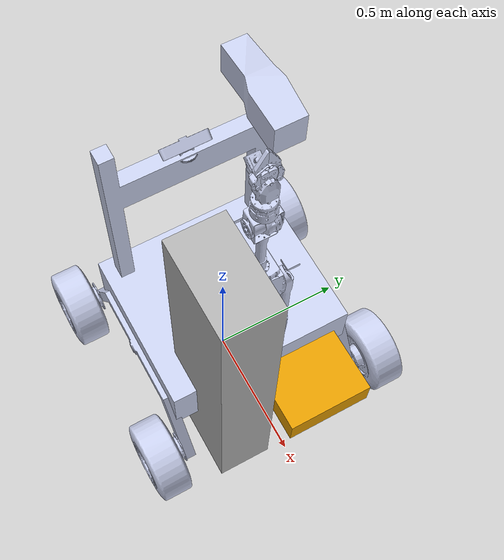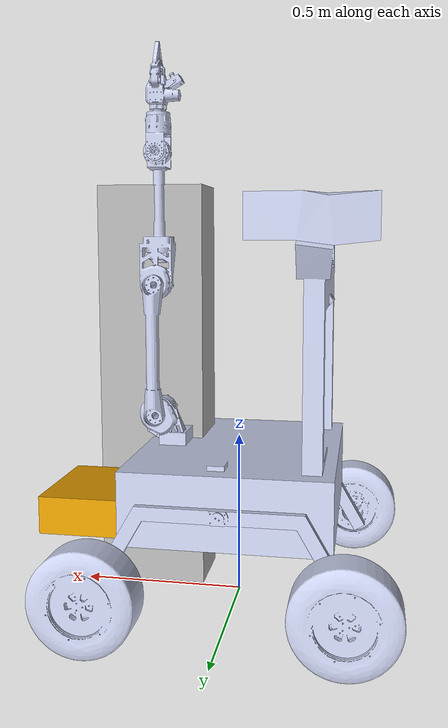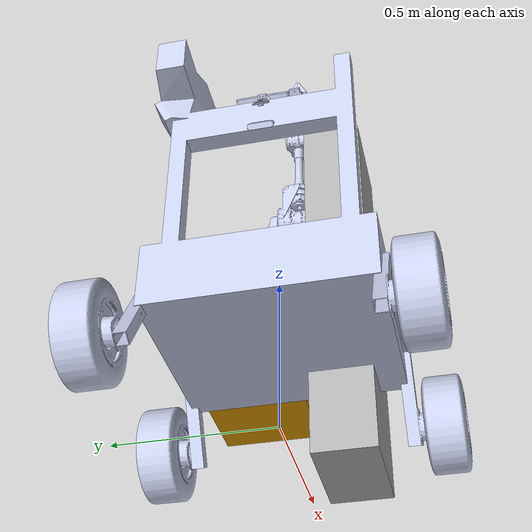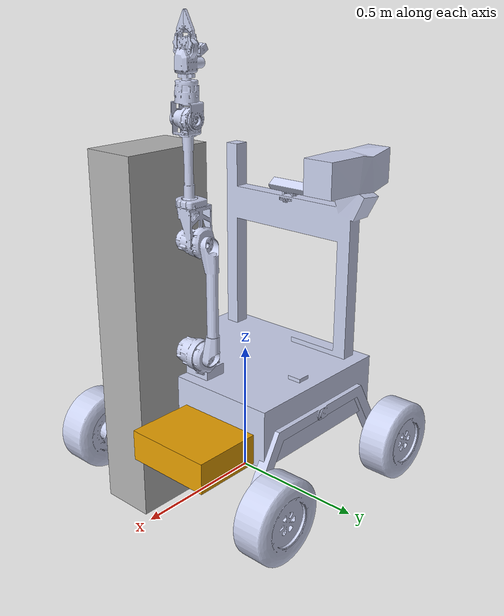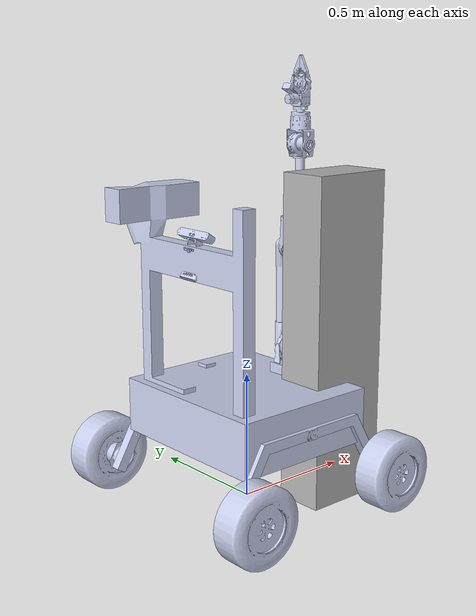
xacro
<?xml version="1.0" encoding="utf-8"?>
<robot xmlns:xacro="http://www.ros.org/wiki/xacro" name="scorpio8">
    <!--=================LINKS =================-->
    <link name="base_footprint" />

    <link name="base_link">
        <inertial>
            <origin xyz="-0.083126 0.053752 0.23235" rpy="0 0 1.5708" />
            <mass value="4.2005" />
            <inertia ixx="0.042059" ixy="5.1186E-05" ixz="2.0607E-05" iyy="0.022715"
                iyz="2.2195E-06" izz="0.04664" />
        </inertial>
        <visual>
            <origin xyz="0 0 0" rpy="0 0 0" />
            <geometry>
                <mesh filename="package://description/meshes/base_link.STL" />
            </geometry>
            <material name="">
                <color rgba="0.79216 0.81961 0.93333 1" />
            </material>
        </visual>
        <collision>
            <origin xyz="0 0 0" rpy="0 0 1.5708" />
            <geometry>
                <mesh filename="package://description/meshes/base_link_simple.STL" />
            </geometry>
        </collision>
    </link>

    <link name="pointcloud_filter_base_link">
        <collision>
            <origin xyz="0 0 0" rpy="0 0 0" />
            <geometry>
                <box size="0.88 0.98 2.2" />
            </geometry>
        </collision>
    </link>

    <link name="pointcloud_filter_wheel_lf_link">
        <collision>
            <origin xyz="0.1 -0.2 0.25" rpy="0 0 0" />
            <geometry>
                <box size="0.55 0.95 0.75" />
            </geometry>
        </collision>
    </link>

    <link name="pointcloud_filter_wheel_lr_link">
        <collision>
            <origin xyz="0 0 0" rpy="0 0 0" />
            <geometry>
                <box size="0.4 0.35 0.4" />
            </geometry>
        </collision>
    </link>

    <link name="pointcloud_filter_wheel_rf_link">
        <collision>
            <origin xyz="0.1 0.2 0.25" rpy="0 0 0" />
            <geometry>
                <box size="0.55 0.95 0.75" />
            </geometry>
        </collision>
    </link>

    <link name="pointcloud_filter_wheel_rr_link">
        <collision>
            <origin xyz="0 0 0" rpy="0 0 0" />
            <geometry>
                <box size="0.4 0.35 0.4" />
            </geometry>
        </collision>
    </link>

    <link name="drill_placeholder_link">
        <visual>
            <origin xyz="0 0 0" rpy="0 0 0" />
            <geometry>
                <box size="0.34 0.2 1.3" />
            </geometry>
        </visual>
        <collision>
            <origin xyz="0 0 0" rpy="0 0 0" />
            <geometry>
                <box size="0.34 0.28 1.3" /> <!-- Slightly larger than visual to stop before collision -->
            </geometry>
        </collision>
    </link>

    <link name="containers_placeholder_link">
        <visual>
            <origin xyz="0 0 0" rpy="0 0 0" />
            <geometry>
                <box size="0.26 0.32 0.11" />
            </geometry>
        </visual>
        <collision>
            <origin xyz="0 0 0" rpy="0 0 0" />
            <geometry>
                <box size="0.32 0.40 0.14" /> <!-- Slightly larger than visual to stop before collision -->
            </geometry>
        </collision>
    </link>

    <link name="mani_base_link">
        <inertial>
            <origin xyz="-0.008833 -0.025663 -0.82163" rpy="0 0 0" />
            <mass value="0.52453" />
            <inertia ixx="0.00042301" ixy="-6.6556E-07" ixz="-8.6254E-06" iyy="0.00075308"
                iyz="-1.2691E-06" izz="0.00043902" />
        </inertial>
        <visual>
            <origin xyz="0 0 0" rpy="0 0 0" />
            <geometry>
                <mesh filename="package://description/meshes/mani_base_link.STL" />
            </geometry>
            <material name="">
                <color rgba="0.79216 0.81961 0.93333 1" />
            </material>
        </visual>
        <collision>
            <origin xyz="0 0 0" rpy="0 0 0" />
            <geometry>
                <mesh filename="package://description/meshes/mani_base_link_convex.STL" />
            </geometry>
        </collision>
    </link>

    <link name="shoulder_link">
        <inertial>
            <origin xyz="5.0147E-10 0.0073458 0.19833" rpy="0 0 0" />
            <mass value="0.30879" />
            <inertia ixx="0.00099796" ixy="6.6832E-13" ixz="-8.486E-10" iyy="0.0010591"
                iyz="-8.6822E-13" izz="0.00014677" />
        </inertial>
        <visual>
            <origin xyz="0 0 0" rpy="0 0 0" />
            <geometry>
                <mesh filename="package://description/meshes/shoulder_link.STL" />
            </geometry>
            <material name="">
                <color rgba="0.79216 0.81961 0.93333 1" />
            </material>
        </visual>
        <collision>
            <origin xyz="0 0 0" rpy="0 0 0" />
            <geometry>
                <mesh filename="package://description/meshes/shoulder_link_convex.STL" />
            </geometry>
        </collision>
    </link>

    <link name="elbow_link">
        <inertial>
            <origin xyz="8.8207E-05 -0.062585 0.05056" rpy="0 0 0" />
            <mass value="0.5438" />
            <inertia ixx="0.0003495" ixy="3.6135E-07" ixz="3.4342E-08" iyy="0.00050989"
                iyz="5.4303E-06" izz="0.00039008" />
        </inertial>
        <visual>
            <origin xyz="0 0 0" rpy="0 0 0" />
            <geometry>
                <mesh filename="package://description/meshes/elbow_link.STL" />
            </geometry>
            <material name="">
                <color rgba="0.79216 0.81961 0.93333 1" />
            </material>
        </visual>
        <collision>
            <origin xyz="0 0 0" rpy="0 0 0" />
            <geometry>
                <mesh filename="package://description/meshes/elbow_link_convex.STL" />
            </geometry>
        </collision>
    </link>

    <link name="wrist1_link">
        <inertial>
            <origin xyz="0 -0.0044319 0.20079" rpy="0 0 0" />
            <mass value="0.27195" />
            <inertia ixx="0.0003288" ixy="-6.0783E-08" ixz="-1.5768E-08" iyy="0.00035563"
                iyz="-5.5998E-07" izz="0.00012039" />
        </inertial>
        <visual>
            <origin xyz="0 0 0" rpy="0 0 0" />
            <geometry>
                <mesh filename="package://description/meshes/wrist1_link.STL" />
            </geometry>
            <material name="">
                <color rgba="0.79216 0.81961 0.93333 1" />
            </material>
        </visual>
        <collision>
            <origin xyz="0 0 0" rpy="0 0 0" />
            <geometry>
                <mesh filename="package://description/meshes/wrist1_link_convex.STL" />
            </geometry>
        </collision>
    </link>

    <link name="basiakowa_link">
        <inertial>
            <origin xyz="-6.625E-05 -0.046522 0.062054" rpy="0 0 0" />
            <mass value="0.15381" />
            <inertia ixx="0.00012243" ixy="3.5518E-08" ixz="-8.1217E-09" iyy="9.2766E-05"
                iyz="-1.0765E-06" izz="0.00017065" />
        </inertial>
        <visual>
            <origin xyz="0 0 0" rpy="0 0 0" />
            <geometry>
                <mesh filename="package://description/meshes/basiakowa_link.STL" />
            </geometry>
            <material name="">
                <color rgba="0.79216 0.81961 0.93333 1" />
            </material>
        </visual>
        <collision>
            <origin xyz="0 0 0" rpy="0 0 0" />
            <geometry>
                <mesh filename="package://description/meshes/basiakowa_link_convex.STL" />
            </geometry>
        </collision>
    </link>

    <link name="wrist2_link">
        <inertial>
            <origin xyz="-0.017888 0.0004157 0.068925" rpy="0 0 0" />
            <mass value="0.27399" />
            <inertia ixx="0.00012629" ixy="-4.1013E-08" ixz="1.1916E-06" iyy="8.3885E-05"
                iyz="-4.3663E-07" izz="8.7593E-05" />
        </inertial>
        <visual>
            <origin xyz="0 0 0" rpy="0 0 0" />
            <geometry>
                <mesh filename="package://description/meshes/wrist2_link.STL" />
            </geometry>
            <material name="">
                <color rgba="0.79216 0.81961 0.93333 1" />
            </material>
        </visual>
        <collision>
            <origin xyz="0 0 0" rpy="0 0 0" />
            <geometry>
                <mesh filename="package://description/meshes/wrist2_link_convex.STL" />
            </geometry>
        </collision>
    </link>

    <link name="gripper_encoder_link">
        <inertial>
            <origin xyz="0.016163 -0.00028685 -0.017" rpy="0 0 0" />
            <mass value="0.0071332" />
            <inertia ixx="2.5701E-07" ixy="5.8889E-09" ixz="-3.003E-15" iyy="1.356E-06"
                iyz="-2.565E-16" izz="1.3159E-06" />
        </inertial>
        <visual>
            <origin xyz="0 0 0" rpy="0 0 0" />
            <geometry>
                <mesh
                filename="package://description/meshes/gripper_encoder_link.STL" />
            </geometry>
            <material name="">
                <color rgba="0.79216 0.81961 0.93333 1" />
            </material>
        </visual>
        <collision>
            <origin xyz="0 0 0" rpy="0 0 0" />
            <geometry>
                <mesh
                filename="package://description/meshes/gripper_encoder_link.STL" />
            </geometry>
        </collision>
    </link>

    <link name="gripper_encoder_mirror_link">
        <inertial>
            <origin xyz="0.016163 -0.00028685 -0.017" rpy="0 0 0" />
            <mass value="0.0071332" />
            <inertia ixx="2.5701E-07" ixy="5.8889E-09" ixz="-3.003E-15" iyy="1.356E-06"
                iyz="-2.565E-16" izz="1.3159E-06" />
        </inertial>
        <visual>
            <origin xyz="0 0 0" rpy="0 0 0" />
            <geometry>
                <mesh
                filename="package://description/meshes/gripper_encoder_link.STL" />
            </geometry>
            <material name="">
                <color rgba="0.79216 0.81961 0.93333 1" />
            </material>
        </visual>
        <collision>
            <origin xyz="0 0 0" rpy="0 0 0" />
            <geometry>
                <mesh
                filename="package://description/meshes/gripper_encoder_link.STL" />
            </geometry>
        </collision>
    </link>

    <link name="gripper_finger_link">
        <inertial>
            <origin xyz="0.030543 -0.014262 -0.014" rpy="0 0 0" />
            <mass value="0.019647" />
            <inertia ixx="2.1825E-06" ixy="1.7619E-06" ixz="2.8698E-13" iyy="4.1472E-06"
                iyz="-4.1559E-14" izz="5.6501E-06" />
        </inertial>
        <visual>
            <origin xyz="0 0 0" rpy="0 0 0" />
            <geometry>
                <mesh filename="package://description/meshes/gripper_finger_link.STL" />
            </geometry>
            <material name="">
                <color rgba="0.79216 0.81961 0.93333 1" />
            </material>
        </visual>
        <collision>
            <origin xyz="0 0 0" rpy="0 0 0" />
            <geometry>
                <mesh filename="package://description/meshes/gripper_finger_link.STL" />
            </geometry>
        </collision>
    </link>

    <link name="gripper_finger_mirror_link">
        <inertial>
            <origin xyz="0.030543 -0.014262 -0.014" rpy="0 0 0" />
            <mass value="0.019647" />
            <inertia ixx="2.1825E-06" ixy="1.7619E-06" ixz="2.8698E-13" iyy="4.1472E-06"
                iyz="-4.1559E-14" izz="5.6501E-06" />
        </inertial>
        <visual>
            <origin xyz="0 0 0" rpy="0 0 0" />
            <geometry>
                <mesh filename="package://description/meshes/gripper_finger_link.STL" />
            </geometry>
            <material name="">
                <color rgba="0.79216 0.81961 0.93333 1" />
            </material>
        </visual>
        <collision>
            <origin xyz="0 0 0" rpy="0 0 0" />
            <geometry>
                <mesh filename="package://description/meshes/gripper_finger_link.STL" />
            </geometry>
        </collision>
    </link>

    <link name="wahacz_L_link">
        <inertial>
            <origin xyz="1.362E-07 0.00014793 -0.067975" rpy="0 0 0" />
            <mass value="0.34494" />
            <inertia ixx="0.0011637" ixy="2.2392E-09" ixz="-1.1412E-08" iyy="0.0037762"
                iyz="-5.0697E-07" izz="0.0027662" />
        </inertial>
        <visual>
            <origin xyz="0 0 0" rpy="0 0 0" />
            <geometry>
                <mesh filename="package://description/meshes/wahacz_L_link.STL" />
            </geometry>
            <material name="">
                <color rgba="0.79216 0.81961 0.93333 1" />
            </material>
        </visual>
        <collision>
            <origin xyz="0 0 0" rpy="0 0 0" />
            <geometry>
                <mesh filename="package://description/meshes/wahacz_L_link_simple.STL" />
            </geometry>
        </collision>
    </link>

    <link name="wheel_LF_link">
        <inertial>
            <origin xyz="-7.3018E-06 -0.00022197 -8.9267E-06" rpy="0 0 0" />
            <mass value="3.6246" />
            <inertia ixx="0.01373" ixy="5.135E-09" ixz="-2.4544E-06" iyy="0.020859"
                iyz="-1.3343E-09" izz="0.013628" />
        </inertial>
        <visual>
            <origin xyz="0 0 0" rpy="0 0 3.1415926" />
            <geometry>
                <mesh filename="package://description/meshes/wheel_link.STL" />
            </geometry>
            <material name="">
                <color rgba="0.79216 0.81961 0.93333 1" />
            </material>
        </visual>
        <collision>
            <origin xyz="0 0 0" rpy="0 0 3.1415926" />
            <geometry>
                <mesh filename="package://description/meshes/wheel_link_simple.STL" />
            </geometry>
        </collision>
    </link>

    <link name="wheel_LR_link">
        <inertial>
            <origin xyz="-1.1382E-05 -0.00022197 1.8602E-06" rpy="0 0 0" />
            <mass value="3.6246" />
            <inertia ixx="0.013651" ixy="1.4119E-09" ixz="-4.2644E-05" iyy="0.020859"
                iyz="-5.1142E-09" izz="0.013706" />
        </inertial>
        <visual>
            <origin xyz="0 0 0" rpy="0 0 3.1415926" />
            <geometry>
                <mesh filename="package://description/meshes/wheel_link.STL" />
            </geometry>
            <material name="">
                <color rgba="0.79216 0.81961 0.93333 1" />
            </material>
        </visual>
        <collision>
            <origin xyz="0 0 0" rpy="0 0 3.1415926" />
            <geometry>
                <mesh filename="package://description/meshes/wheel_link_simple.STL" />
            </geometry>
        </collision>
    </link>

    <link name="wahacz_R_link">
        <inertial>
            <origin xyz="-6.2383E-07 -0.00014793 -0.067975" rpy="0 0 0" />
            <mass value="0.34494" />
            <inertia ixx="0.0011637" ixy="2.2427E-09" ixz="2.2629E-08" iyy="0.0037762"
                iyz="5.0697E-07" izz="0.0027662" />
        </inertial>
        <visual>
            <origin xyz="0 0 0" rpy="0 0 0" />
            <geometry>
                <mesh filename="package://description/meshes/wahacz_R_link.STL" />
            </geometry>
            <material name="">
                <color rgba="0.79216 0.81961 0.93333 1" />
            </material>
        </visual>
        <collision>
            <origin xyz="0 0 0" rpy="0 0 0" />
            <geometry>
                <mesh filename="package://description/meshes/wahacz_R_link_simple.STL" />
            </geometry>
        </collision>
    </link>

    <link name="wheel_RF_link">
        <inertial>
            <origin xyz="1.1382E-05 0.00022197 1.8601E-06" rpy="0 0 0" />
            <mass value="3.6246" />
            <inertia ixx="0.013651" ixy="1.412E-09" ixz="4.2644E-05" iyy="0.020859" iyz="5.1142E-09"
                izz="0.013706" />
        </inertial>
        <visual>
            <origin xyz="0 0 0" rpy="0 0 0" />
            <geometry>
                <mesh filename="package://description/meshes/wheel_link.STL" />
            </geometry>
            <material name="">
                <color rgba="0.79216 0.81961 0.93333 1" />
            </material>
        </visual>
        <collision>
            <origin xyz="0 0 0" rpy="0 0 0" />
            <geometry>
                <mesh filename="package://description/meshes/wheel_link_simple.STL" />
            </geometry>
        </collision>
    </link>

    <link name="wheel_RR_link">
        <inertial>
            <origin xyz="7.3018E-06 0.00022197 -8.9267E-06" rpy="0 0 0" />
            <mass value="3.6246" />
            <inertia ixx="0.01373" ixy="5.135E-09" ixz="2.4537E-06" iyy="0.020859" iyz="1.3343E-09"
                izz="0.013628" />
        </inertial>
        <visual>
            <origin xyz="0 0 0" rpy="0 0 0" />
            <geometry>
                <mesh filename="package://description/meshes/wheel_link.STL" />
            </geometry>
            <material name="">
                <color rgba="0.79216 0.81961 0.93333 1" />
            </material>
        </visual>
        <collision>
            <origin xyz="0 0 0" rpy="0 0 0" />
            <geometry>
                <mesh filename="package://description/meshes/wheel_link_simple.STL" />
            </geometry>
        </collision>
    </link>

    <link name="zed_rotor_link">
        <inertial>
            <origin xyz="-0.0001069 9.1123E-14 -0.0013679" rpy="0 0 0" />
            <mass value="0.06329" />
            <inertia ixx="2.4722E-05" ixy="-2.2498E-15" ixz="2.7796E-07" iyy="2.2086E-05"
                iyz="-2.373E-16" izz="4.4399E-05" />
        </inertial>
        <visual>
            <origin xyz="0 0 0" rpy="0 0 0" />
            <geometry>
                <mesh filename="package://description/meshes/zed_rotor_link.STL" />
            </geometry>
            <material name="">
                <color rgba="0.79216 0.81961 0.93333 1" />
            </material>
        </visual>
        <collision>
            <origin xyz="0 0 0" rpy="0 0 0" />
            <geometry>
                <mesh filename="package://description/meshes/zed_rotor_link.STL" />
            </geometry>
        </collision>
    </link>

    <link name="zed_camera_link">
        <inertial>
            <origin xyz="-0.0037743 9.2181E-07 0.014444" rpy="0 0 0" />
            <mass value="0.17032" />
            <inertia ixx="0.00038294" ixy="3.3076E-09" ixz="-6.4547E-08" iyy="3.2574E-05"
                iyz="1.3556E-09" izz="0.00039062" />
        </inertial>
        <visual>
            <origin xyz="0 0 0" rpy="0 0.0 0" />
            <geometry>
                <mesh filename="package://description/meshes/zed2i_base_link.STL" />
            </geometry>
            <material name="">
                <color rgba="0.79216 0.81961 0.93333 1" />
            </material>
        </visual>
        <collision>
            <origin xyz="0 0 0" rpy="0 0.5 0" />
            <geometry>
                <mesh filename="package://description/meshes/zed2i_base_link_simple.STL" />
            </geometry>
        </collision>
    </link>

    <link name="lidar_link">
        <inertial>
            <origin xyz="0 0 0" rpy="0 0 0" />
            <mass value="0.310" />
            <inertia ixx="2.3574E-05" ixy="-4.511E-08" ixz="1.3017E-08" iyy="2.1117E-06"
                iyz="-8.0163E-09" izz="2.2257E-05" />
        </inertial>
    </link>

    <link name="realsense_link">
        <inertial>
            <origin xyz="0.0016277 -0.0016823 -0.012002" rpy="3.1416 0 0" />
            <mass value="0.038191" />
            <inertia ixx="2.3574E-05" ixy="-4.511E-08" ixz="1.3017E-08" iyy="2.1117E-06"
                iyz="-8.0163E-09" izz="2.2257E-05" />
        </inertial>
        <visual>
            <origin xyz="0 0 0" rpy="3.1416 0 0" />
            <geometry>
                <mesh filename="package://description/meshes/realsense_link.STL" />
            </geometry>
            <material name="">
                <color rgba="0.79216 0.81961 0.93333 1" />
            </material>
        </visual>
        <collision>
            <origin xyz="0 0 0" rpy="3.1416 0 0" />
            <geometry>
                <mesh filename="package://description/meshes/realsense_link_simple.STL" />
            </geometry>
        </collision>
    </link>

    <!--=================JOINTS =================-->

    <joint name="base_footprint_joint" type="fixed">
        <origin xyz="0 0 0.36" rpy="0 0 0" />
        <parent link="base_footprint" />
        <child link="base_link" />
    </joint>

    <joint name="pointcloud_filter_base_joint" type="fixed">
        <origin xyz="0 0 0" rpy="0 0 0" />
        <parent link="base_link" />
        <child link="pointcloud_filter_base_link" />
    </joint>

    <joint name="pointcloud_filter_wheel_lf_joint" type="fixed">
        <origin xyz="0 0 0" rpy="0 0 0" />
        <parent link="wheel_LF_link" />
        <child link="pointcloud_filter_wheel_lf_link" />
    </joint>

    <joint name="pointcloud_filter_wheel_lr_joint" type="fixed">
        <origin xyz="0 0 0" rpy="0 0 0" />
        <parent link="wheel_LR_link" />
        <child link="pointcloud_filter_wheel_lr_link" />
    </joint>

    <joint name="pointcloud_filter_wheel_rf_joint" type="fixed">
        <origin xyz="0 0 0" rpy="0 0 0" />
        <parent link="wheel_RF_link" />
        <child link="pointcloud_filter_wheel_rf_link" />
    </joint>

    <joint name="pointcloud_filter_wheel_rr_joint" type="fixed">
        <origin xyz="0 0 0" rpy="0 0 0" />
        <parent link="wheel_RR_link" />
        <child link="pointcloud_filter_wheel_rr_link" />
    </joint>

    <joint name="drill_placeholder_joint" type="prismatic">
        <origin xyz="0.30 -0.16 0.27" rpy="0 0 0" />
        <parent link="base_link" />
        <child link="drill_placeholder_link" />
        <axis xyz="0 0 1"/>
        <limit effort="100.0" lower="0.0" upper="10.0" velocity="1000.0"/>
    </joint>

    <joint name="containers_placeholder_joint" type="prismatic">
        <origin xyz="0.41 0.14 -0.045" rpy="0 0 0" />
        <parent link="base_link" />
        <child link="containers_placeholder_link" />
        <axis xyz="0 0 1"/>
        <limit effort="100.0" lower="0.0" upper="10.0" velocity="1000.0"/>
    </joint>

    <link name="mani_base_offset_link"/>

    <joint name="mani_base_offset_joint" type="prismatic">
        <origin xyz="0.20522 -0.01774 0.1297" rpy="0 0 0" />
        <parent link="base_link" />
        <child link="mani_base_offset_link" />
        <axis xyz="0 1 0"/>
        <limit effort="100.0" lower="0.0" upper="0.23" velocity="1000.0"/>
    </joint>

    <joint name="mani_base_joint" type="revolute">
        <origin xyz="0 0 0" rpy="0 0 0" />
        <parent link="mani_base_offset_link" />
        <child link="mani_base_link" />
        <axis xyz="0 0 1" />
        <limit lower="-2" upper="2" effort="100" velocity="0.104" />
    </joint>

    <joint name="shoulder_joint" type="revolute">
        <origin xyz="0.0497 0.07874 0.07579" rpy="0 0 0" />
        <parent link="mani_base_link" />
        <child link="shoulder_link" />
        <axis xyz="0 1 0" />
        <limit lower="-1.5" upper="1.7" effort="40" velocity="0.104" />
    </joint>

    <joint name="elbow_joint" type="revolute">
        <origin xyz="0 0 0.405" rpy="0 0 0" />
        <parent link="shoulder_link" />
        <child link="elbow_link" />
        <axis xyz="0 -1 0" />
        <limit lower="-2.7" upper="0.6" effort="25" velocity="0.104" />
    </joint>

    <joint name="wrist1_joint" type="continuous">
        <origin xyz="0 -0.0785 0.146" rpy="0 0 0" />
        <parent link="elbow_link" />
        <child link="wrist1_link" />
        <axis xyz="0 0 1" />
    </joint>

    <joint name="basiakowa_joint" type="revolute">
        <origin xyz="0 0.0459 0.257" rpy="0 0 0" />
        <parent link="wrist1_link" />
        <child link="basiakowa_link" />
        <axis xyz="0 -1 0" />
        <limit lower="-1.5" upper="1.5" effort="90" velocity="0.104" />
    </joint>

    <joint name="wrist2_joint" type="continuous">
        <origin xyz="0 -0.046 0.1196" rpy="0 0 0" />
        <parent link="basiakowa_link" />
        <child link="wrist2_link" />
        <axis xyz="0 0 1" />
        <limit effort="40" velocity="0.35" />
    </joint>

    <joint name="gripper_encoder_joint" type="revolute">
        <origin xyz="0.017 0.03 0.088749" rpy="3.1416 -1.5708 0" />
        <parent link="wrist2_link" />
        <child link="gripper_encoder_link" />
        <axis xyz="0 0 -1" />
        <limit lower="-0.1" upper="0.77" effort="1" velocity="1" />
    </joint>

    <joint name="gripper_encoder_mirror_joint" type="revolute">
        <origin xyz="-0.017 -0.03 0.088749" rpy="3.1416 -1.5708 3.1416" />
        <parent link="wrist2_link" />
        <child link="gripper_encoder_mirror_link" />
        <axis xyz="0 0 -1" />
        <limit lower="-0.1" upper="0.77" effort="1" velocity="1" />
    </joint>

    <joint name="gripper_finger_joint" type="revolute">
        <origin xyz="0.044976 0.0014666 -0.031" rpy="0 3.1416 3.1416" />
        <parent link="gripper_encoder_link" />
        <child link="gripper_finger_link" />
        <axis xyz="0 0 -1" />
        <limit lower="-0.1" upper="0.77" effort="1" velocity="1" />
    </joint>

    <joint name="gripper_finger_mirror_joint" type="revolute">
        <origin xyz="0.044976 0.0014666 -0.031" rpy="0 3.1416 3.1416" />
        <parent link="gripper_encoder_mirror_link" />
        <child link="gripper_finger_mirror_link" />
        <axis xyz="0 0 -1" />
        <limit lower="-0.1" upper="0.77" effort="1" velocity="1" />
    </joint>

    <link name="endEffector_link" />

    <joint name="endEffector_joint" type="fixed">
        <origin xyz="0 0 0.21" rpy="0 -1.57079632679 0" />
        <parent link="wrist2_link" />
        <child link="endEffector_link" />
        <axis xyz="0 0 0" />
    </joint>

    <link name="cyglidar_link" />

    <joint name="cyglidar_joint" type="fixed">
        <origin xyz="-0.0354 0 0.10535" rpy="0 -1.5708 0" />
        <parent link="wrist2_link" />
        <child link="cyglidar_link" />
        <axis xyz="0 0 0" />
    </joint>

    <link name="manicam_link" />

    <joint name="manicam_joint" type="fixed">
        <origin xyz="-0.06839 0 0.10163" rpy="0 -1.1781009 0" />
        <parent link="wrist2_link" />
        <child link="manicam_link" />
        <axis xyz="0 0 0" />
    </joint>

    <link name="manicam_optical_link" />

    <joint name="manicam_optical_joint" type="fixed">
        <origin xyz="0 0 0" rpy="-1.5707963 0 -1.5707963" />
        <parent link="manicam_link" />
        <child link="manicam_optical_link" />
        <axis xyz="0 0 0" />
    </joint>

    <joint name="wahacz_L_joint" type="continuous">
        <origin xyz="0 0.3455 0" rpy="0 0 0" />
        <parent link="base_link" />
        <child link="wahacz_L_link" />
        <axis xyz="0 1 0" />
    </joint>

    <joint name="wheel_LF_joint" type="continuous">
        <origin xyz="0.34931 0.103 -0.21531" rpy="0 0 0" />
        <parent link="wahacz_L_link" />
        <child link="wheel_LF_link" />
        <axis xyz="0 1 0" />
    </joint>

    <joint name="wheel_LR_joint" type="continuous">
        <origin xyz="-0.34781 0.103 -0.21271" rpy="0 0 0" />
        <parent link="wahacz_L_link" />
        <child link="wheel_LR_link" />
        <axis xyz="0 1 0" />
    </joint>

    <joint name="wahacz_R_joint" type="continuous">
        <origin xyz="0 -0.3455 0" rpy="0 0 0" />
        <parent link="base_link" />
        <child link="wahacz_R_link" />
        <axis xyz="0 1 0" />
    </joint>

    <joint name="wheel_RF_joint" type="continuous">
        <origin xyz="0.34781 -0.103 -0.21271" rpy="0 0 0" />
        <parent link="wahacz_R_link" />
        <child link="wheel_RF_link" />
        <axis xyz="0 1 0" />
    </joint>

    <joint name="wheel_RR_joint" type="continuous">
        <origin xyz="-0.34931 -0.103 -0.21531" rpy="0 0 0" />
        <parent link="wahacz_R_link" />
        <child link="wheel_RR_link" />
        <axis xyz="0 1 0" />
    </joint>

    <joint name="zed_rotor_joint" type="revolute">
        <origin xyz="-0.2475 0  0.6695" rpy="0 0 0" />
        <parent link="base_link" />
        <child link="zed_rotor_link" />
        <axis xyz="0 0 1" />
        <limit lower="-1" upper="1" effort="0" velocity="0" />
    </joint>

    <joint name="zed_joint" type="fixed">
        <!-- 10 degrees up (Black 3D print) -->
        <!-- Standard (Orange 3D print) -->
        <!-- New black print (Unknown)-->
        <origin xyz="0.00023971 0 0.030233" rpy="0 0.575959 0" />
        <parent link="zed_rotor_link" />
        <child link="zed_camera_link" />
        <axis xyz="0 0 0" />
    </joint>

    <joint name="realsense_back_joint" type="fixed">
        <origin xyz="-0.281 0  0.579" rpy="0 2.35619449 0" />
        <parent link="base_link" />
        <child link="realsense_link" />
        <axis xyz="0 0 0" />
    </joint>

    <joint name="lidar_joint" type="fixed">
        <origin xyz="-0.194 0.032  0.582" rpy="0 3.14159265 1.57079" />
        <parent link="base_link" />
        <child link="lidar_link" />
        <axis xyz="0 0 0" />
    </joint>

    <!-- ZED URDF from Stereolabs-->

    <!-- Camera Center -->
    <link name="zed_camera_center">
    </link>

    <joint name="zed_camera_center_joint" type="fixed">
        <parent link="zed_camera_link" />
        <child link="zed_camera_center" />
        <origin xyz="0 0 0" rpy="0 0 0" />
        <axis xyz="0 0 1" />
        <limit lower="-2.7" upper="2.7" effort="0" velocity="0" />
    </joint>

    <!-- Left Camera -->
    <link name="zed_left_camera_frame">
    </link>

    <joint name="zed_left_camera_joint" type="fixed">
        <parent link="zed_camera_center" />
        <child link="zed_left_camera_frame" />
        <origin xyz="0 0.06 0" rpy="0 0 0" />
    </joint>

    <link name="zed_left_camera_optical_frame" />

    <joint name="zed_left_camera_optical_joint" type="fixed">
        <origin xyz="-0.01 0 0" rpy="-1.57079632679 0.0 -1.57079632679" />
        <parent link="zed_left_camera_frame" />
        <child link="zed_left_camera_optical_frame" />
    </joint>

    <!-- Right Camera -->
    <link name="zed_right_camera_frame" />

    <joint name="zed_right_camera_joint" type="fixed">
        <parent link="zed_camera_center" />
        <child link="zed_right_camera_frame" />
        <origin xyz="0 -0.06 0" rpy="0 0 0" />
    </joint>

    <link name="zed_right_camera_optical_frame" />
    <joint name="zed_right_camera_optical_joint" type="fixed">
        <origin xyz="-0.01 0 0" rpy="-1.57079632679 0.0 -1.57079632679" />
        <parent link="zed_right_camera_frame" />
        <child link="zed_right_camera_optical_frame" />
    </joint>

    <!-- ZED2i sensors-->

    <link name="zed_mag_link" />

    <joint name="zed_mag_joint" type="fixed">
        <parent link="zed_camera_center" />
        <child link="zed_mag_link" />
        <origin xyz="0 0 0" rpy="0 0 0" />
    </joint>

    <link name="zed_baro_link" />

    <joint name="zed_baro_joint" type="fixed">
        <parent link="zed_camera_center" />
        <child link="zed_baro_link" />
        <origin xyz="0 0 0" rpy="0 0 0" />
    </joint>

    <link name="zed_temp_left_link" />

    <joint name="zed_temp_left_joint" type="fixed">
        <parent link="zed_left_camera_frame" />
        <child link="zed_temp_left_link" />
        <origin xyz="0 0 0" rpy="0 0 0" />
    </joint>

    <link name="zed_temp_right_link" />

    <joint name="zed_temp_right_joint" type="fixed">
        <parent link="zed_right_camera_frame" />
        <child link="zed_temp_right_link" />
        <origin xyz="0 0 0" rpy="0 0 0" />
    </joint>

    <link name="zed_imu_link" />

    <joint name="zed_camera_to_imu" type="fixed">
      <parent link="zed_left_camera_frame" />
      <child link="zed_imu_link" />
      <origin xyz="-0.002 -0.023061 0.000217" rpy="-0.0000087 -0.0030882 -0.0056259" />
    </joint>

    <link name="dual_axis_camera_base_link">
        <inertial>
        <origin xyz="-0.025666 0.035837 0.011795" rpy="0 0 0" />
        <mass value="0.18506" />
        <inertia ixx="0.00017516" ixy="1.1287E-06" ixz="-4.3308E-06" iyy="9.1433E-05" iyz="-7.5679E-07" izz="0.00021537" />
        </inertial>
        <visual>
        <origin xyz="0 0 0" rpy="0 0 0" />
        <geometry>
            <mesh filename="package://description/meshes/dual_axis_camera_base_link.STL" />
        </geometry>
        <material name="">
            <color rgba="0.79216 0.81961 0.93333 1" />
        </material>
        </visual>
        <collision>
        <origin xyz="0 0 0" rpy="0 0 0" />
        <geometry>
            <mesh filename="package://description/meshes/dual_axis_camera_base_link.STL" />
        </geometry>
        </collision>
    </link>

    <joint name="dual_axis_camera_base_joint" type="fixed">
        <origin xyz="0.2725 -0.242 -0.0975" rpy="0 0 0" />
        <parent link="base_link" />
        <child link="dual_axis_camera_base_link" />
    </joint>

    <link name="dual_axis_camera_yaw_link">
        <inertial>
        <origin xyz="-0.040079 0.0013861 0.022957" rpy="0 0 0" />
        <mass value="0.032845" />
        <inertia ixx="1.6957E-05" ixy="5.041E-07" ixz="6.7527E-06" iyy="2.7519E-05" iyz="-4.1152E-07" izz="1.5123E-05" />
        </inertial>
        <visual>
        <origin xyz="0 0 0" rpy="0 0 0" />
        <geometry>
            <mesh filename="package://description/meshes/dual_axis_camera_yaw_link.STL" />
        </geometry>
        <material name="">
            <color rgba="0.79216 0.81961 0.93333 1" />
        </material>
        </visual>
        <collision>
        <origin xyz="0 0 0" rpy="0 0 0" />
        <geometry>
            <mesh filename="package://description/meshes/dual_axis_camera_yaw_link.STL" />
        </geometry>
        </collision>
    </link>

    <joint name="dual_axis_camera_yaw_joint" type="revolute">
        <origin xyz="-0.02805 0.029 0.042391" rpy="0 0 0" />
        <parent link="dual_axis_camera_base_link" />
        <child link="dual_axis_camera_yaw_link" />
        <axis xyz="0 0 1" />
        <limit lower="-1.5" upper="1.5" effort="0" velocity="0" />
    </joint>

    <link name="dual_axis_camera_pitch_link">
        <inertial>
        <origin xyz="0.018887 -0.0066811 0.0044393" rpy="0 0 0" />
        <mass value="0.025156" />
        <inertia ixx="1.9053E-05" ixy="9.9296E-07" ixz="-1.5881E-07" iyy="1.9134E-05" iyz="3.972E-08" izz="3.711E-06" />
        </inertial>
        <visual>
        <origin xyz="0 0 0" rpy="0 0 0" />
        <geometry>
            <mesh filename="package://description/meshes/dual_axis_camera_pitch_link.STL" />
        </geometry>
        <material name="">
            <color rgba="0.79216 0.81961 0.93333 1" />
        </material>
        </visual>
        <collision>
        <origin xyz="0 0 0" rpy="0 0 0" />
        <geometry>
            <mesh filename="package://description/meshes/dual_axis_camera_pitch_link.STL" />
        </geometry>
        </collision>
    </link>

    <joint name="dual_axis_camera_pitch_joint" type="revolute">
        <origin xyz="-0.0305 0.006 0.0498" rpy="1.5708 0 0" />
        <parent link="dual_axis_camera_yaw_link" />
        <child link="dual_axis_camera_pitch_link" />
        <axis xyz="0 0 -1" />
        <limit lower="-0.9" upper="0.6" effort="0" velocity="0" />
    </joint>

    <link name="dual_axis_camera_mount_camera_link" />

    <joint name="dual_axis_camera_mount_camera_joint" type="fixed">
        <origin xyz="0.031133 -0.0133 0.0084056" rpy="-1.5708 0 0" />
        <parent link="dual_axis_camera_pitch_link" />
        <child link="dual_axis_camera_mount_camera_link" />
        <axis xyz="0 0 0" />
    </joint>

</robot>
